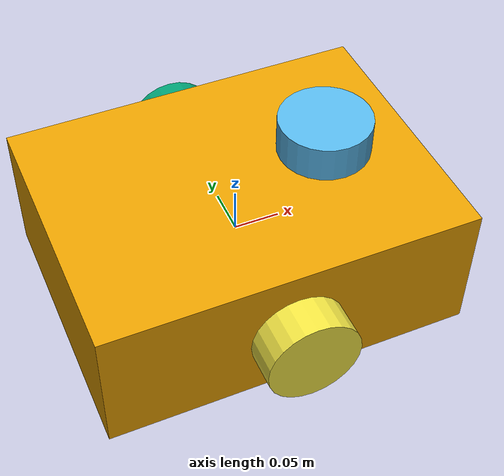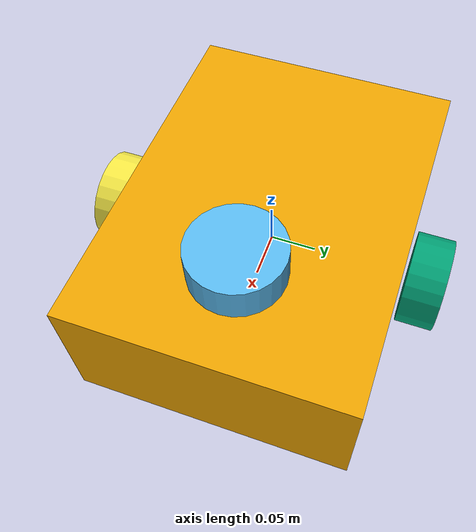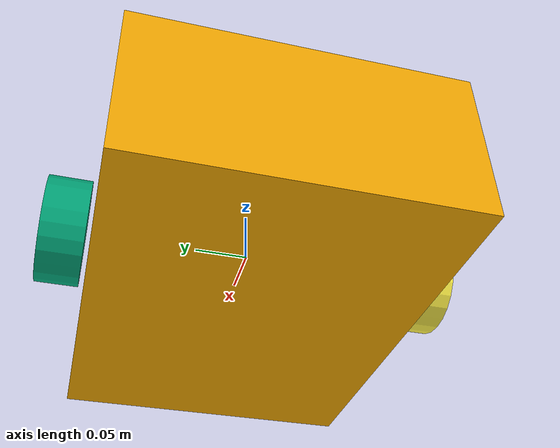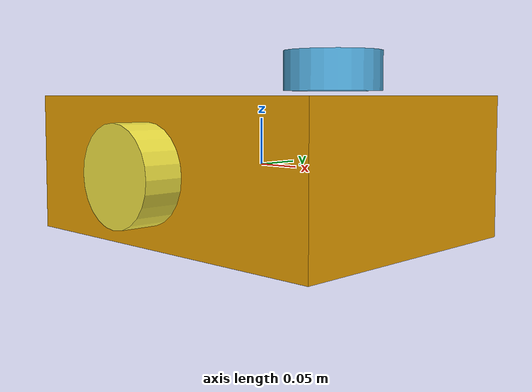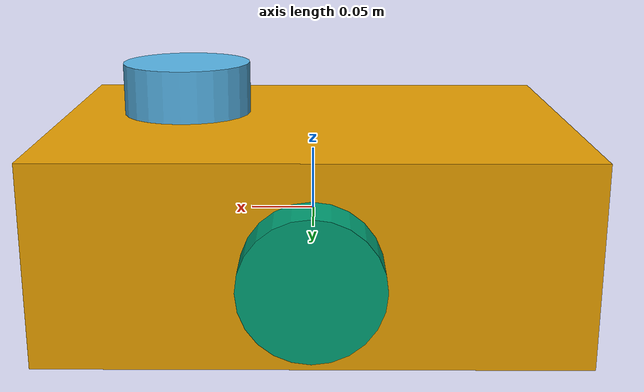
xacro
<?xml version="1.0"?>
<robot xmlns:xacro="http://www.ros.org/wiki/xacro" name="robot">

    <link name="base_link">
        <visual>
            <geometry><box size="0.4 0.3 0.15"/></geometry>
        </visual>
        <collision>
            <geometry><box size="0.4 0.3 0.15"/></geometry>
        </collision>
        <inertial>
            <origin xyz="0 0 0" rpy="0 0 0"/>
            <mass value="1.0"/>
            <inertia ixx="0.01" ixy="0.0" ixz="0.0" iyy="0.01" iyz="0.0" izz="0.01"/>
        </inertial>
    </link>

    <link name="laser_frame">
        <visual>
            <geometry><cylinder radius="0.05" length="0.04"/></geometry>
        </visual>
        <collision>
            <geometry><cylinder radius="0.05" length="0.04"/></geometry>
        </collision>
        <inertial>
            <origin xyz="0 0 0" rpy="0 0 0"/>
            <mass value="0.1"/>
            <inertia ixx="0.001" ixy="0.0" ixz="0.0" iyy="0.001" iyz="0.0" izz="0.001"/>
        </inertial>
    </link>

    <!-- LEFT WHEEL -->
    <link name="left_wheel">
        <visual>
            <geometry><cylinder radius="0.05" length="0.04"/></geometry>
        </visual>
        <collision>
            <geometry><cylinder radius="0.05" length="0.04"/></geometry>
        </collision>
        <inertial>
            <origin xyz="0 0 0" rpy="0 0 0"/>
            <mass value="0.1"/>
            <inertia ixx="0.001" ixy="0.0" ixz="0.0" iyy="0.001" iyz="0.0" izz="0.001"/>
        </inertial>
    </link>
    <joint name="left_wheel_joint" type="continuous">
        <parent link="base_link"/><child link="left_wheel"/><origin xyz="0 0.175 0" rpy="-1.57 0 0"/><axis xyz="0 0 1"/>
    </joint>

    <joint name="laser_joint" type="fixed">
        <parent link="base_link"/><child link="laser_frame"/><origin xyz="0.1 0 0.1" rpy="0 0 0"/>
    </joint>

    <!-- RIGHT WHEEL -->
    <link name="right_wheel">
        <visual>
            <geometry><cylinder radius="0.05" length="0.04"/></geometry>
        </visual>
        <collision>
            <geometry><cylinder radius="0.05" length="0.04"/></geometry>
        </collision>
        <inertial>
            <origin xyz="0 0 0" rpy="0 0 0"/>
            <mass value="0.1"/>
            <inertia ixx="0.001" ixy="0.0" ixz="0.0" iyy="0.001" iyz="0.0" izz="0.001"/>
        </inertial>
    </link>
    <joint name="right_wheel_joint" type="continuous">
        <parent link="base_link"/><child link="right_wheel"/><origin xyz="0 -0.175 0" rpy="1.57 0 0"/><axis xyz="0 0 1"/>
    </joint>

    </robot>
